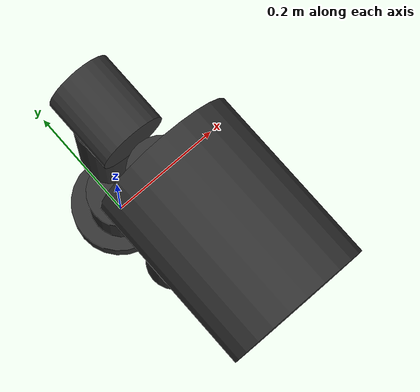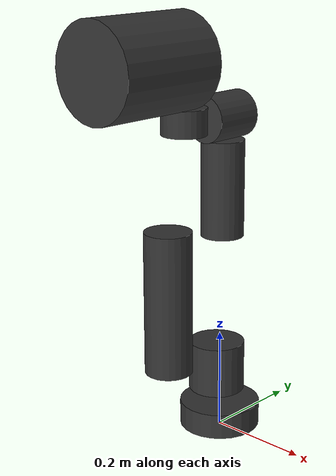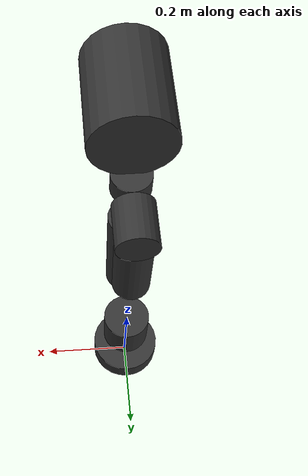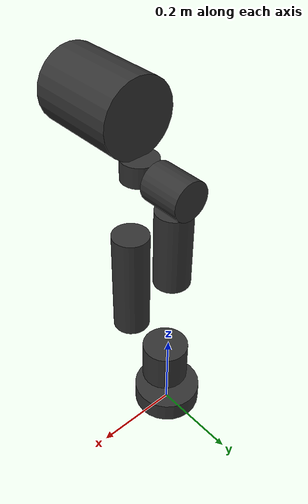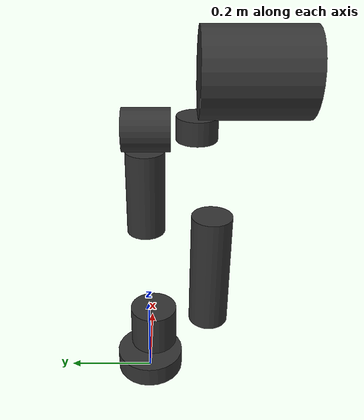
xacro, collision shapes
<?xml version="1.0"?>
<robot name="omy_3m" xmlns:xacro="http://www.ros.org/wiki/xacro">
  <xacro:arg name="prefix" default="" />
  <xacro:arg name="use_sim" default="false" />
  <xacro:arg name="use_fake_hardware" default="false" />
  <xacro:arg name="fake_sensor_commands" default="false" />
  <xacro:arg name="ros2_control_type" default="omy_3m_position" />

  <xacro:include filename="$(find open_manipulator_description)/urdf/omy_3m/omy_3m_arm.urdf.xacro" />

  <xacro:include filename="$(find open_manipulator_description)/gazebo/omy_3m.gazebo.xacro" />

  <xacro:include filename="$(find open_manipulator_description)/ros2_control/$(arg ros2_control_type).ros2_control.xacro" />

  <xacro:include filename="$(find open_manipulator_description)/ros2_control/omy_3m_end_unit.ros2_control.xacro" />

  <link name="world"/>

  <joint name="$(arg prefix)world_fixed" type="fixed">
    <parent link="world"/>
    <child link="$(arg prefix)link0"/>
    <origin xyz="0.0 0.0 0.0" rpy="0 0 0"/>
  </joint>

  <joint name="$(arg prefix)end_effector_joint" type="fixed">
      <parent link="$(arg prefix)link6" />
      <child link="$(arg prefix)end_effector_link" />
      <origin xyz="0 -0.103 0" rpy="0 0 0" />
  </joint>

  <link name="$(arg prefix)end_effector_link">
      <visual>
        <origin xyz="0 0 0" rpy="0 0 0"/>
        <geometry>
        <box size="0.01 0.01 0.01" />
        </geometry>
        <material name="red">
        <color rgba="1.0 0.0 0.0 1"/>
        </material>
      </visual>
  </link>

  <xacro:omy_3m prefix="$(arg prefix)" />
  <xacro:omy_3m_gazebo prefix="$(arg prefix)" />

  <xacro:omy_3m_system
    name="OMY3MSystem" prefix="$(arg prefix)" use_sim="$(arg use_sim)"
    use_fake_hardware="$(arg use_fake_hardware)"
    fake_sensor_commands="$(arg fake_sensor_commands)"/>

  <xacro:omy_3m_end_unit_system
    name="OMY3MEndUnitSystem" prefix="$(arg prefix)" use_sim="$(arg use_sim)"
    use_fake_hardware="$(arg use_fake_hardware)"
    fake_sensor_commands="$(arg fake_sensor_commands)"/>

  <gazebo>
    <plugin filename="gz_ros2_control-system" name="gz_ros2_control::GazeboSimROS2ControlPlugin">
      <parameters>$(find open_manipulator_bringup)/config/omy_3m/hardware_controller_manager.yaml</parameters>
    </plugin>
  </gazebo>

</robot>

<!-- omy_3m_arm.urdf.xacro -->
<robot xmlns:xacro="http://www.ros.org/wiki/xacro">
   <xacro:macro name="omy_3m" params="prefix">
      <xacro:property name="meshes_file_direction" value="package://open_manipulator_description/meshes/omy_3m/" />
      <link name="${prefix}link0">
         <visual>
            <origin xyz="0 0 0" rpy="0 0 0" />
            <geometry>
               <mesh filename="${meshes_file_direction}/base_unit.stl" scale="0.001 0.001 0.001" />
            </geometry>
            <material name="grey">
               <color rgba="0.2 0.2 0.2 1" />
            </material>
         </visual>
         <collision>
            <origin xyz="0 0 0.03" rpy="0 0 0" />
            <geometry>
               <cylinder radius="0.08" length="0.05"/>
            </geometry>
         </collision>
         <inertial>
            <origin xyz="-4.021582400e-03 1.308399100e-03 5.507347000e-02" />
            <mass value="1.528748600e+00" />
            <inertia ixx="4.642820300e-03" ixy="4.440553200e-05" ixz="-1.504929600e-04" iyy="4.973695500e-03" iyz="2.075604700e-05" izz="6.407832100e-03" />
         </inertial>
      </link>
      <joint name="${prefix}joint1" type="revolute">
         <parent link="${prefix}link0" />
         <child link="${prefix}link1" />
         <origin xyz="0.0 0.0 0.1715" rpy="0 0 0" />
         <axis xyz="0 0 1" />
         <limit velocity="4.8" effort="1000" lower="${-pi*2.0}" upper="${pi*2.0}" />
         <dynamics damping="0.05" />
      </joint>
      <link name="${prefix}link1">
         <visual>
            <origin xyz="0 0 0" rpy="0 0 0" />
            <geometry>
               <mesh filename="${meshes_file_direction}/link1.stl" scale="0.001 0.001 0.001" />
            </geometry>
            <material name="grey">
               <color rgba="0.2 0.2 0.2 1" />
            </material>
         </visual>
         <collision>
            <origin xyz="0 -0.01 -0.035" rpy="0 0 0" />
            <geometry>
               <cylinder radius="0.055" length="0.1"/>
            </geometry>
         </collision>
         <inertial>
            <origin xyz="-1.106361500e-04 -5.471127000e-03 -1.589773300e-02" />
            <mass value="2.064883200e+00" />
            <inertia ixx="3.033219000e-03" ixy="5.179283800e-06" ixz="3.335796100e-06" iyy="2.727672400e-03" iyz="1.793495300e-04" izz="2.282657600e-03" />
         </inertial>
      </link>
      <joint name="${prefix}joint2" type="revolute">
         <parent link="${prefix}link1" />
         <child link="${prefix}link2" />
         <origin xyz="0 -0.1215 0.0" rpy="0 0 0" />
         <axis xyz="0 1 0" />
         <limit velocity="4.8" effort="1000" lower="${-pi*2.0}" upper="${pi*2.0}" />
         <dynamics damping="0.1" />
      </joint>
      <link name="${prefix}link2">
         <visual>
            <origin xyz="0 0 0" rpy="0 0 0" />
            <geometry>
               <mesh filename="${meshes_file_direction}/link2.stl" scale="0.001 0.001 0.001" />
            </geometry>
            <material name="grey">
               <color rgba="0.2 0.2 0.2 1" />
            </material>
         </visual>
         <collision>
            <origin xyz="-0.005 -0.02 0.13" rpy="0 0 0" />
            <geometry>
               <cylinder radius="0.046" length="0.28"/>
            </geometry>
         </collision>
         <inertial>
            <origin xyz="1.140537900e-05 1.618424400e-02 1.036063400e-01" />
            <mass value="3.679539500e+00" />
            <inertia ixx="5.173191800e-02" ixy="2.395881900e-06" ixz="5.789396000e-05" iyy="5.035340100e-02" iyz="-4.382571600e-04" izz="4.501436000e-03" />
         </inertial>
      </link>
      <joint name="${prefix}joint3" type="revolute">
         <parent link="${prefix}link2" />
         <child link="${prefix}link3" />
         <origin xyz="0 0 0.247" rpy="0 0 0" />
         <axis xyz="0 1 0" />
         <limit velocity="4.8" effort="1000" lower="${-pi*2.0}" upper="${pi*2.0}" />
         <dynamics damping="0.1" />
      </joint>
      <link name="${prefix}link3">
         <visual>
            <origin xyz="0 0 0" rpy="0 0 0" />
            <geometry>
               <mesh filename="${meshes_file_direction}/link3.stl" scale="0.001 0.001 0.001" />
            </geometry>
            <material name="grey">
               <color rgba="0.2 0.2 0.2 1" />
            </material>
         </visual>
         <collision>
            <origin xyz="0 0.125 0.08" rpy="0 0 0" />
            <geometry>
               <cylinder radius="0.042" length="0.19"/>
            </geometry>
         </collision>
         <inertial>
            <origin xyz="7.814868900e-05 1.071848100e-01 1.411726700e-01" />
            <mass value="2.386591600e+00" />
            <inertia ixx="2.269439900e-02" ixy="-9.414242800e-07" ixz="-1.855175700e-05" iyy="2.192008700e-02" iyz="1.917938700e-04" izz="2.776155900e-03" />
         </inertial>
      </link>
      <joint name="${prefix}joint4" type="revolute">
         <parent link="${prefix}link3" />
         <child link="${prefix}link4" />
         <origin xyz="0 0.1215 0.2195" rpy="0 0 0" />
         <axis xyz="0 1 0" />
         <limit velocity="4.8" effort="1000" lower="${-pi*2.0}" upper="${pi*2.0}" />
         <dynamics damping="0.1" />
      </joint>
      <link name="${prefix}link4">
         <visual>
            <origin xyz="0 0 0" rpy="0 0 0" />
            <geometry>
               <mesh filename="${meshes_file_direction}/link4.stl" scale="0.001 0.001 0.001" />
            </geometry>
            <material name="grey">
               <color rgba="0.2 0.2 0.2 1" />
            </material>
         </visual>
         <collision>
            <origin xyz="0 0 0" rpy="1.57 0 0" />
            <geometry>
               <cylinder radius="0.045" length="0.10"/>
            </geometry>
         </collision>
         <inertial>
            <origin xyz="-1.331825600e-04 -1.074666700e-01 1.909068800e-02" />
            <mass value="1.400234700e+00" />
            <inertia ixx="1.754567900e-03" ixy="-4.586337900e-06" ixz="-1.775914200e-06" iyy="1.565214700e-03" iyz="1.533991300e-04" izz="1.215983900e-03" />
         </inertial>
      </link>
      <joint name="${prefix}joint5" type="revolute">
         <parent link="${prefix}link4" />
         <child link="${prefix}link5" />
         <origin xyz="0 -0.113 0" rpy="0 0 0" />
         <axis xyz="0 0 1" />
         <limit velocity="4.8" effort="1000" lower="${-pi*2.0}" upper="${pi*2.0}" />
         <dynamics damping="0.1" />
      </joint>
      <link name="${prefix}link5">
         <visual>
            <origin xyz="0 0 0" rpy="0 0 0" />
            <geometry>
               <mesh filename="${meshes_file_direction}/link5.stl" scale="0.001 0.001 0.001" />
            </geometry>
            <material name="grey">
               <color rgba="0.2 0.2 0.2 1" />
            </material>
         </visual>
         <collision>
            <origin xyz="0 0.01 0.005" rpy="0 0 0" />
            <geometry>
               <cylinder radius="0.043" length="0.05"/>
            </geometry>
         </collision>
         <inertial>
            <origin xyz="1.331825600e-04 -1.909068800e-02 1.099666700e-01" />
            <mass value="1.400234700e+00" />
            <inertia ixx="1.754567900e-03" ixy="-1.775914300e-06" ixz="-4.586337600e-06" iyy="1.215983900e-03" iyz="1.533991300e-04" izz="1.565214700e-03" />
         </inertial>
      </link>
      <joint name="${prefix}joint6" type="revolute">
         <parent link="${prefix}link5" />
         <child link="${prefix}link6" />
         <origin xyz="0 0 0.1155" rpy="0 0 0" />
         <axis xyz="0 1 0" />
         <limit velocity="4.8" effort="1000" lower="${-pi*2.0}" upper="${pi*2.0}" />
         <dynamics damping="0.1" />
      </joint>
      <link name="${prefix}link6">
         <visual>
            <origin xyz="0 0 0" rpy="0 0 0" />
            <geometry>
               <mesh filename="${meshes_file_direction}/link6.stl" scale="0.001 0.001 0.001" />
            </geometry>
            <material name="grey">
               <color rgba="0.2 0.2 0.2 1" />
            </material>
         </visual>
         <collision>
            <origin xyz="0 -0.1 0" rpy="1.57 0 0" />
            <geometry>
               <cylinder radius="0.09" length="0.22"/>
            </geometry>
         </collision>
         <inertial>
            <origin xyz="1.108014600e-05 -8.059405600e-02 9.302933700e-03" />
            <mass value="3.244269200e-01" />
            <inertia ixx="1.939884900e-04" ixy="2.142013200e-07" ixz="-1.234201900e-06" iyy="2.491307000e-04" iyz="-3.893734800e-06" izz="1.653675100e-04" />
         </inertial>
      </link>
   </xacro:macro>
</robot>
